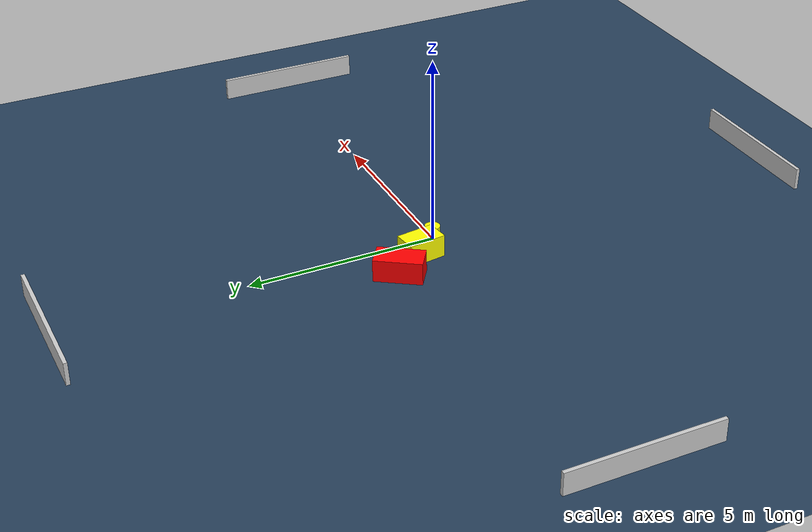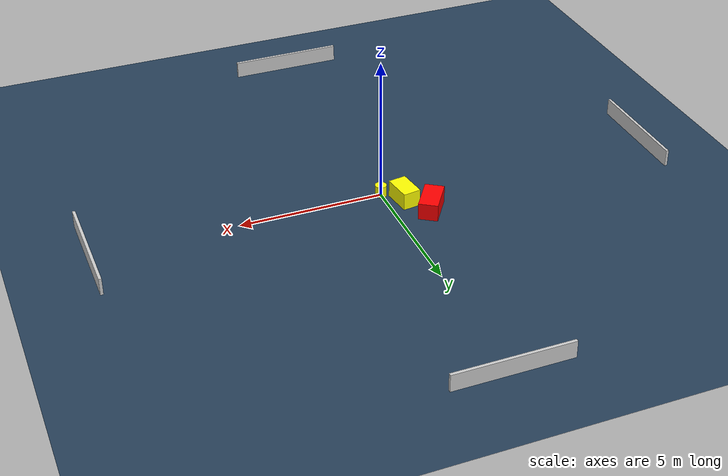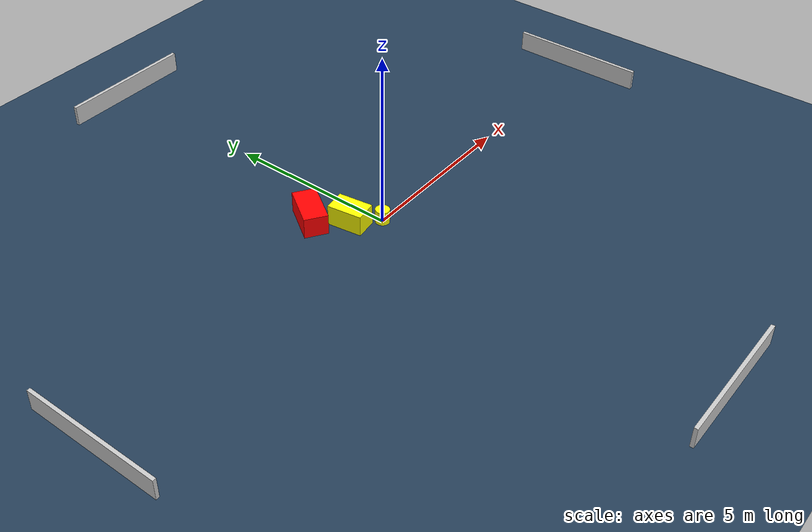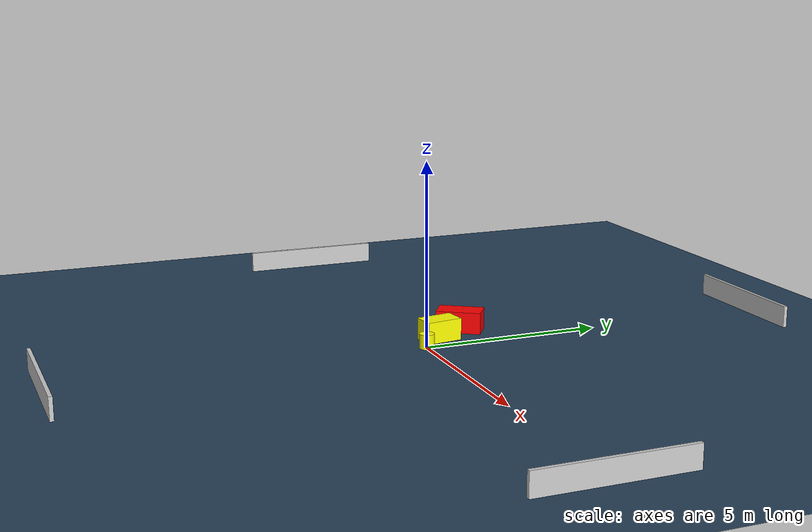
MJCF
<?xml version="1.0" ?>
<mujoco model="generated_environment">
  <option timestep="0.01" integrator="RK4" cone="elliptic"/>
  <default>
    <geom density="1"/>
  </default>
  <asset>
    <texture builtin="gradient" height="3072" name="skybox" rgb1="0.3 0.5 0.7" rgb2="0 0 0" type="skybox" width="512"/>
    <texture builtin="checker" height="300" name="groundplane" rgb1="0.2 0.3 0.4" rgb2="0.1 0.2 0.3" type="2d" width="300"/>
    <material name="groundplane" reflectance="0.2" texrepeat="5 5" texture="groundplane"/>
  </asset>
  <worldbody>
    <light dir="0 0 -1" directional="true" pos="0 0 1.5"/>
    <geom condim="3" friction="0.5 0.005 0.001" material="groundplane" name="floor" pos="0 0 0" size="0 0 0.05" type="plane"/>
    <body name="walls">
      <geom name="wall_1" condim="4" pos="-10.0 0.0 0.3" rgba="0.800000011920929 0.800000011920929 0.800000011920929 1.0" size="0.05 2.0 0.3" type="box"/>
      <geom name="wall_2" condim="4" pos="10.0 0.0 0.3" rgba="0.800000011920929 0.800000011920929 0.800000011920929 1.0" size="0.05 2.0 0.3" type="box"/>
      <geom name="wall_3" condim="4" pos="0.0 -10.0 0.3" rgba="0.800000011920929 0.800000011920929 0.800000011920929 1.0" size="2.0 0.05 0.3" type="box"/>
      <geom name="wall_4" condim="4" pos="0.0 10.0 0.3" rgba="0.800000011920929 0.800000011920929 0.800000011920929 1.0" size="2.0 0.05 0.3" type="box"/>
    </body>
    <body name="robot">
      <joint name="joint_x" type="slide" pos="0 0 0" axis="1 0 0"/>
      <joint name="joint_y" type="slide" pos="0 0 0" axis="0 1 0"/>
      <geom name="robot" type="cylinder" pos="0.0 0.0 0.2" size="0.2 0.2 0.0" mass="5.0" friction="1.0 0.005 0.0001" condim="4" rgba="1.0 1.0 0.0 1.0"/>
    </body>
    <body name="obstacle_1_movable">
      <geom name="obstacle_1_movable" condim="4" pos="-0.6094985577647597 0.6157128610379935 0.3" euler="0 0 98.11820072772474" friction="0.0 0.005 0.001" rgba="1.0 1.0 0.0 1.0" size="0.5031096885451343 0.3138645663273537 0.3" type="box" mass="0.1"/>
      <joint type="free"/>
    </body>
    <body name="obstacle_2_static">
      <geom name="obstacle_2_static" condim="4" pos="-1.210036133019771 1.4918135942355335 0.3" euler="0 0 55.984481551111365" friction="0.0 0.005 0.001" rgba="1.0 0.0 0.0 1.0" size="0.6235987620515223 0.3331857516315374 0.3" type="box"/>
    </body>
  </worldbody>
  <actuator>
    <motor name="actuator_x" joint="joint_x" gear="1" ctrlrange="-1 1"/>
    <motor name="actuator_y" joint="joint_y" gear="1" ctrlrange="-1 1"/>
  </actuator>
</mujoco>
